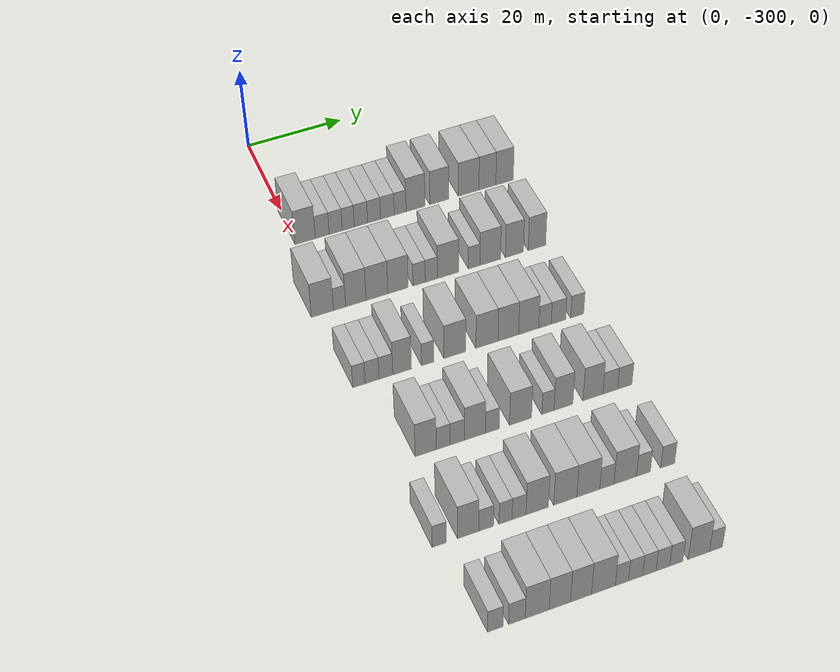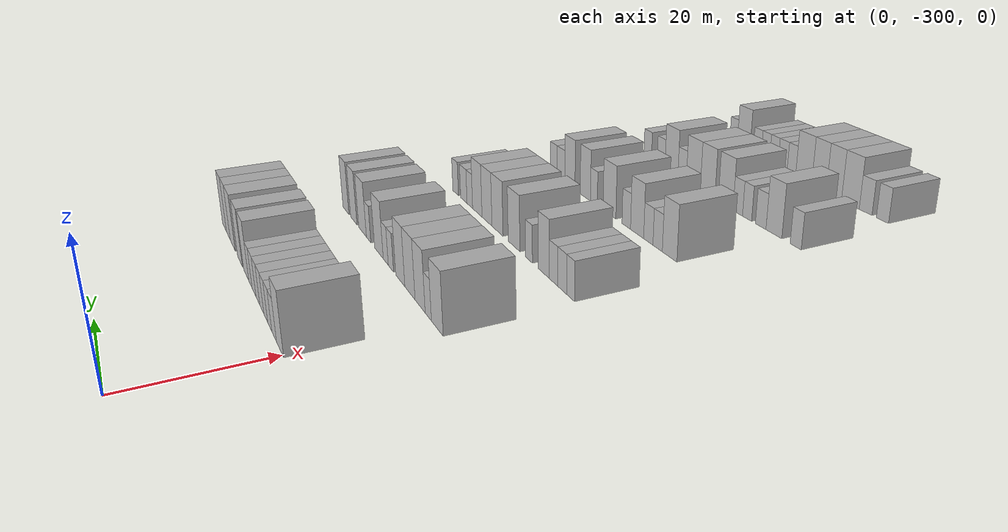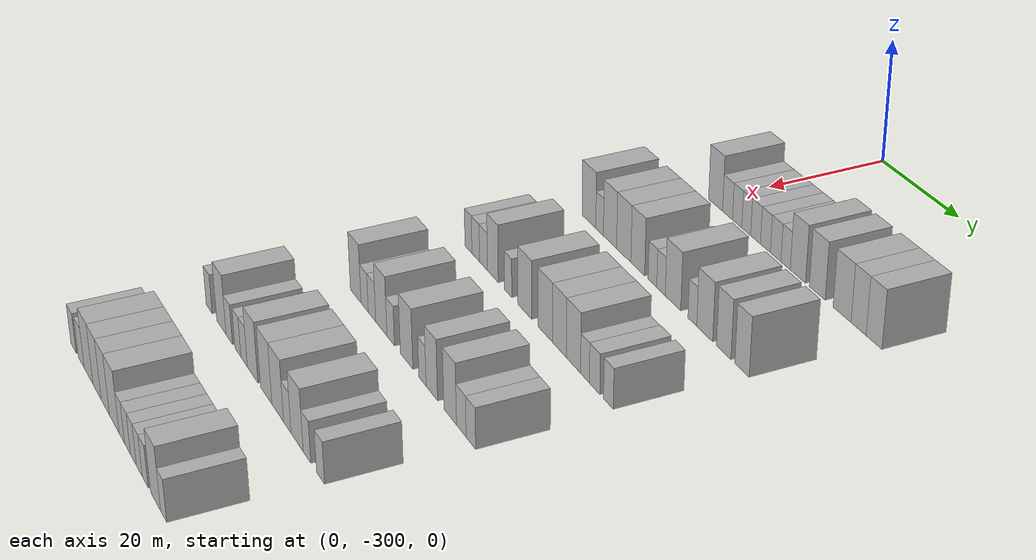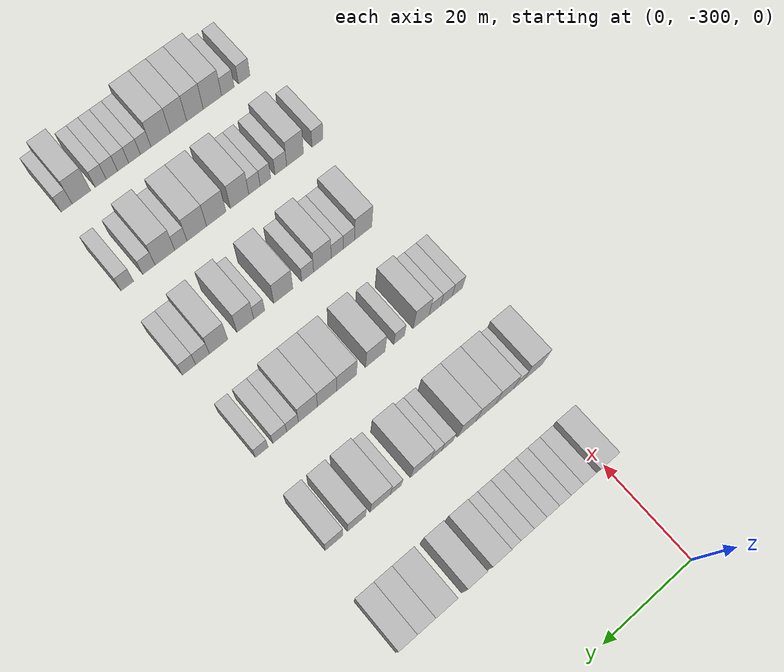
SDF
<sdf version="1.6">
 <world name="default">
  <model name="building_13">
   <static>1</static>
   <pose>25.0000 -298.5053 0 0.000000 0.000000 0.000000</pose>
   <link name="link">
    <pose>0 0 4.50 0 0 0</pose>
    <collision name="collision"><geometry><box><size>10.0000 4.1703 9.0000</size></box></geometry></collision>
    <visual name="visual">
     <cast_shadows>0</cast_shadows>
     <geometry><box><size>10.0000 4.1703 9.0000</size></box></geometry>
     <material>
      <script>
       <uri>model://HANNAS_wall/materials/scripts</uri>
       <uri>model://HANNAS_wall/materials/textures</uri>
       <name>vrc/HANNAS_wall</name>
      </script>
     </material>
    </visual>
   </link>
  </model>
  <model name="building_14">
   <static>1</static>
   <pose>25.0000 -294.9755 0 0.000000 0.000000 0.000000</pose>
   <link name="link">
    <pose>0 0 3.00 0 0 0</pose>
    <collision name="collision"><geometry><box><size>10.0000 2.8892 6.0000</size></box></geometry></collision>
    <visual name="visual">
     <cast_shadows>0</cast_shadows>
     <geometry><box><size>10.0000 2.8892 6.0000</size></box></geometry>
     <material>
      <script>
       <uri>model://HANNAS_wall/materials/scripts</uri>
       <uri>model://HANNAS_wall/materials/textures</uri>
       <name>vrc/HANNAS_wall</name>
      </script>
     </material>
    </visual>
   </link>
  </model>
  <model name="building_15">
   <static>1</static>
   <pose>25.0000 -292.1879 0 0.000000 0.000000 0.000000</pose>
   <link name="link">
    <pose>0 0 3.00 0 0 0</pose>
    <collision name="collision"><geometry><box><size>10.0000 2.6861 6.0000</size></box></geometry></collision>
    <visual name="visual">
     <cast_shadows>0</cast_shadows>
     <geometry><box><size>10.0000 2.6861 6.0000</size></box></geometry>
     <material>
      <script>
       <uri>model://HANNAS_wall/materials/scripts</uri>
       <uri>model://HANNAS_wall/materials/textures</uri>
       <name>vrc/HANNAS_wall</name>
      </script>
     </material>
    </visual>
   </link>
  </model>
  <model name="building_16">
   <static>1</static>
   <pose>25.0000 -289.5821 0 0.000000 0.000000 0.000000</pose>
   <link name="link">
    <pose>0 0 3.00 0 0 0</pose>
    <collision name="collision"><geometry><box><size>10.0000 2.5253 6.0000</size></box></geometry></collision>
    <visual name="visual">
     <cast_shadows>0</cast_shadows>
     <geometry><box><size>10.0000 2.5253 6.0000</size></box></geometry>
     <material>
      <script>
       <uri>model://HANNAS_wall/materials/scripts</uri>
       <uri>model://HANNAS_wall/materials/textures</uri>
       <name>vrc/HANNAS_wall</name>
      </script>
     </material>
    </visual>
   </link>
  </model>
  <model name="building_17">
   <static>1</static>
   <pose>25.0000 -286.9411 0 0.000000 0.000000 0.000000</pose>
   <link name="link">
    <pose>0 0 3.00 0 0 0</pose>
    <collision name="collision"><geometry><box><size>10.0000 2.7568 6.0000</size></box></geometry></collision>
    <visual name="visual">
     <cast_shadows>0</cast_shadows>
     <geometry><box><size>10.0000 2.7568 6.0000</size></box></geometry>
     <material>
      <script>
       <uri>model://HANNAS_wall/materials/scripts</uri>
       <uri>model://HANNAS_wall/materials/textures</uri>
       <name>vrc/HANNAS_wall</name>
      </script>
     </material>
    </visual>
   </link>
  </model>
  <model name="building_18">
   <static>1</static>
   <pose>25.0000 -284.1913 0 0.000000 0.000000 0.000000</pose>
   <link name="link">
    <pose>0 0 3.00 0 0 0</pose>
    <collision name="collision"><geometry><box><size>10.0000 2.7428 6.0000</size></box></geometry></collision>
    <visual name="visual">
     <cast_shadows>0</cast_shadows>
     <geometry><box><size>10.0000 2.7428 6.0000</size></box></geometry>
     <material>
      <script>
       <uri>model://HANNAS_wall/materials/scripts</uri>
       <uri>model://HANNAS_wall/materials/textures</uri>
       <name>vrc/HANNAS_wall</name>
      </script>
     </material>
    </visual>
   </link>
  </model>
  <model name="building_19">
   <static>1</static>
   <pose>25.0000 -281.3882 0 0.000000 0.000000 0.000000</pose>
   <link name="link">
    <pose>0 0 3.00 0 0 0</pose>
    <collision name="collision"><geometry><box><size>10.0000 2.8634 6.0000</size></box></geometry></collision>
    <visual name="visual">
     <cast_shadows>0</cast_shadows>
     <geometry><box><size>10.0000 2.8634 6.0000</size></box></geometry>
     <material>
      <script>
       <uri>model://HANNAS_wall/materials/scripts</uri>
       <uri>model://HANNAS_wall/materials/textures</uri>
       <name>vrc/HANNAS_wall</name>
      </script>
     </material>
    </visual>
   </link>
  </model>
  <model name="building_20">
   <static>1</static>
   <pose>25.0000 -278.7010 0 0.000000 0.000000 0.000000</pose>
   <link name="link">
    <pose>0 0 3.00 0 0 0</pose>
    <collision name="collision"><geometry><box><size>10.0000 2.5111 6.0000</size></box></geometry></collision>
    <visual name="visual">
     <cast_shadows>0</cast_shadows>
     <geometry><box><size>10.0000 2.5111 6.0000</size></box></geometry>
     <material>
      <script>
       <uri>model://HANNAS_wall/materials/scripts</uri>
       <uri>model://HANNAS_wall/materials/textures</uri>
       <name>vrc/HANNAS_wall</name>
      </script>
     </material>
    </visual>
   </link>
  </model>
  <model name="building_21">
   <static>1</static>
   <pose>25.0000 -275.4317 0 0.000000 0.000000 0.000000</pose>
   <link name="link">
    <pose>0 0 4.50 0 0 0</pose>
    <collision name="collision"><geometry><box><size>10.0000 4.0274 9.0000</size></box></geometry></collision>
    <visual name="visual">
     <cast_shadows>0</cast_shadows>
     <geometry><box><size>10.0000 4.0274 9.0000</size></box></geometry>
     <material>
      <script>
       <uri>model://HANNAS_wall/materials/scripts</uri>
       <uri>model://HANNAS_wall/materials/textures</uri>
       <name>vrc/HANNAS_wall</name>
      </script>
     </material>
    </visual>
   </link>
  </model>
  <model name="building_22">
   <static>1</static>
   <pose>25.0000 -270.3757 0 0.000000 0.000000 0.000000</pose>
   <link name="link">
    <pose>0 0 4.50 0 0 0</pose>
    <collision name="collision"><geometry><box><size>10.0000 4.0847 9.0000</size></box></geometry></collision>
    <visual name="visual">
     <cast_shadows>0</cast_shadows>
     <geometry><box><size>10.0000 4.0847 9.0000</size></box></geometry>
     <material>
      <script>
       <uri>model://HANNAS_wall/materials/scripts</uri>
       <uri>model://HANNAS_wall/materials/textures</uri>
       <name>vrc/HANNAS_wall</name>
      </script>
     </material>
    </visual>
   </link>
  </model>
  <model name="building_23">
   <static>1</static>
   <pose>25.0000 -264.0987 0 0.000000 0.000000 0.000000</pose>
   <link name="link">
    <pose>0 0 4.50 0 0 0</pose>
    <collision name="collision"><geometry><box><size>10.0000 4.4692 9.0000</size></box></geometry></collision>
    <visual name="visual">
     <cast_shadows>0</cast_shadows>
     <geometry><box><size>10.0000 4.4692 9.0000</size></box></geometry>
     <material>
      <script>
       <uri>model://HANNAS_wall/materials/scripts</uri>
       <uri>model://HANNAS_wall/materials/textures</uri>
       <name>vrc/HANNAS_wall</name>
      </script>
     </material>
    </visual>
   </link>
  </model>
  <model name="building_24">
   <static>1</static>
   <pose>25.0000 -260.0332 0 0.000000 0.000000 0.000000</pose>
   <link name="link">
    <pose>0 0 4.50 0 0 0</pose>
    <collision name="collision"><geometry><box><size>10.0000 3.6618 9.0000</size></box></geometry></collision>
    <visual name="visual">
     <cast_shadows>0</cast_shadows>
     <geometry><box><size>10.0000 3.6618 9.0000</size></box></geometry>
     <material>
      <script>
       <uri>model://HANNAS_wall/materials/scripts</uri>
       <uri>model://HANNAS_wall/materials/textures</uri>
       <name>vrc/HANNAS_wall</name>
      </script>
     </material>
    </visual>
   </link>
  </model>
  <model name="building_25">
   <static>1</static>
   <pose>25.0000 -256.3118 0 0.000000 0.000000 0.000000</pose>
   <link name="link">
    <pose>0 0 4.50 0 0 0</pose>
    <collision name="collision"><geometry><box><size>10.0000 3.7809 9.0000</size></box></geometry></collision>
    <visual name="visual">
     <cast_shadows>0</cast_shadows>
     <geometry><box><size>10.0000 3.7809 9.0000</size></box></geometry>
     <material>
      <script>
       <uri>model://HANNAS_wall/materials/scripts</uri>
       <uri>model://HANNAS_wall/materials/textures</uri>
       <name>vrc/HANNAS_wall</name>
      </script>
     </material>
    </visual>
   </link>
  </model>
  <model name="building_181">
   <static>1</static>
   <pose>44.0000 -301.9026 0 0.000000 0.000000 0.000000</pose>
   <link name="link">
    <pose>0 0 4.50 0 0 0</pose>
    <collision name="collision"><geometry><box><size>10.0000 4.4046 9.0000</size></box></geometry></collision>
    <visual name="visual">
     <cast_shadows>0</cast_shadows>
     <geometry><box><size>10.0000 4.4046 9.0000</size></box></geometry>
     <material>
      <script>
       <uri>model://HANNAS_wall/materials/scripts</uri>
       <uri>model://HANNAS_wall/materials/textures</uri>
       <name>vrc/HANNAS_wall</name>
      </script>
     </material>
    </visual>
   </link>
  </model>
  <model name="building_182">
   <static>1</static>
   <pose>44.0000 -298.4883 0 0.000000 0.000000 0.000000</pose>
   <link name="link">
    <pose>0 0 3.00 0 0 0</pose>
    <collision name="collision"><geometry><box><size>10.0000 2.4240 6.0000</size></box></geometry></collision>
    <visual name="visual">
     <cast_shadows>0</cast_shadows>
     <geometry><box><size>10.0000 2.4240 6.0000</size></box></geometry>
     <material>
      <script>
       <uri>model://HANNAS_wall/materials/scripts</uri>
       <uri>model://HANNAS_wall/materials/textures</uri>
       <name>vrc/HANNAS_wall</name>
      </script>
     </material>
    </visual>
   </link>
  </model>
  <model name="building_183">
   <static>1</static>
   <pose>44.0000 -295.2097 0 0.000000 0.000000 0.000000</pose>
   <link name="link">
    <pose>0 0 4.50 0 0 0</pose>
    <collision name="collision"><geometry><box><size>10.0000 4.1331 9.0000</size></box></geometry></collision>
    <visual name="visual">
     <cast_shadows>0</cast_shadows>
     <geometry><box><size>10.0000 4.1331 9.0000</size></box></geometry>
     <material>
      <script>
       <uri>model://HANNAS_wall/materials/scripts</uri>
       <uri>model://HANNAS_wall/materials/textures</uri>
       <name>vrc/HANNAS_wall</name>
      </script>
     </material>
    </visual>
   </link>
  </model>
  <model name="building_184">
   <static>1</static>
   <pose>44.0000 -290.9482 0 0.000000 0.000000 0.000000</pose>
   <link name="link">
    <pose>0 0 4.50 0 0 0</pose>
    <collision name="collision"><geometry><box><size>10.0000 4.3900 9.0000</size></box></geometry></collision>
    <visual name="visual">
     <cast_shadows>0</cast_shadows>
     <geometry><box><size>10.0000 4.3900 9.0000</size></box></geometry>
     <material>
      <script>
       <uri>model://HANNAS_wall/materials/scripts</uri>
       <uri>model://HANNAS_wall/materials/textures</uri>
       <name>vrc/HANNAS_wall</name>
      </script>
     </material>
    </visual>
   </link>
  </model>
  <model name="building_185">
   <static>1</static>
   <pose>44.0000 -286.6903 0 0.000000 0.000000 0.000000</pose>
   <link name="link">
    <pose>0 0 4.50 0 0 0</pose>
    <collision name="collision"><geometry><box><size>10.0000 4.1257 9.0000</size></box></geometry></collision>
    <visual name="visual">
     <cast_shadows>0</cast_shadows>
     <geometry><box><size>10.0000 4.1257 9.0000</size></box></geometry>
     <material>
      <script>
       <uri>model://HANNAS_wall/materials/scripts</uri>
       <uri>model://HANNAS_wall/materials/textures</uri>
       <name>vrc/HANNAS_wall</name>
      </script>
     </material>
    </visual>
   </link>
  </model>
  <model name="building_186">
   <static>1</static>
   <pose>44.0000 -282.3643 0 0.000000 0.000000 0.000000</pose>
   <link name="link">
    <pose>0 0 3.00 0 0 0</pose>
    <collision name="collision"><geometry><box><size>10.0000 2.5264 6.0000</size></box></geometry></collision>
    <visual name="visual">
     <cast_shadows>0</cast_shadows>
     <geometry><box><size>10.0000 2.5264 6.0000</size></box></geometry>
     <material>
      <script>
       <uri>model://HANNAS_wall/materials/scripts</uri>
       <uri>model://HANNAS_wall/materials/textures</uri>
       <name>vrc/HANNAS_wall</name>
      </script>
     </material>
    </visual>
   </link>
  </model>
  <model name="building_187">
   <static>1</static>
   <pose>44.0000 -279.8544 0 0.000000 0.000000 0.000000</pose>
   <link name="link">
    <pose>0 0 3.00 0 0 0</pose>
    <collision name="collision"><geometry><box><size>10.0000 2.4934 6.0000</size></box></geometry></collision>
    <visual name="visual">
     <cast_shadows>0</cast_shadows>
     <geometry><box><size>10.0000 2.4934 6.0000</size></box></geometry>
     <material>
      <script>
       <uri>model://HANNAS_wall/materials/scripts</uri>
       <uri>model://HANNAS_wall/materials/textures</uri>
       <name>vrc/HANNAS_wall</name>
      </script>
     </material>
    </visual>
   </link>
  </model>
  <model name="building_188">
   <static>1</static>
   <pose>44.0000 -276.4101 0 0.000000 0.000000 0.000000</pose>
   <link name="link">
    <pose>0 0 4.50 0 0 0</pose>
    <collision name="collision"><geometry><box><size>10.0000 4.3952 9.0000</size></box></geometry></collision>
    <visual name="visual">
     <cast_shadows>0</cast_shadows>
     <geometry><box><size>10.0000 4.3952 9.0000</size></box></geometry>
     <material>
      <script>
       <uri>model://HANNAS_wall/materials/scripts</uri>
       <uri>model://HANNAS_wall/materials/textures</uri>
       <name>vrc/HANNAS_wall</name>
      </script>
     </material>
    </visual>
   </link>
  </model>
  <model name="building_189">
   <static>1</static>
   <pose>44.0000 -271.0089 0 0.000000 0.000000 0.000000</pose>
   <link name="link">
    <pose>0 0 3.00 0 0 0</pose>
    <collision name="collision"><geometry><box><size>10.0000 2.4071 6.0000</size></box></geometry></collision>
    <visual name="visual">
     <cast_shadows>0</cast_shadows>
     <geometry><box><size>10.0000 2.4071 6.0000</size></box></geometry>
     <material>
      <script>
       <uri>model://HANNAS_wall/materials/scripts</uri>
       <uri>model://HANNAS_wall/materials/textures</uri>
       <name>vrc/HANNAS_wall</name>
      </script>
     </material>
    </visual>
   </link>
  </model>
  <model name="building_190">
   <static>1</static>
   <pose>44.0000 -267.6491 0 0.000000 0.000000 0.000000</pose>
   <link name="link">
    <pose>0 0 4.50 0 0 0</pose>
    <collision name="collision"><geometry><box><size>10.0000 4.3125 9.0000</size></box></geometry></collision>
    <visual name="visual">
     <cast_shadows>0</cast_shadows>
     <geometry><box><size>10.0000 4.3125 9.0000</size></box></geometry>
     <material>
      <script>
       <uri>model://HANNAS_wall/materials/scripts</uri>
       <uri>model://HANNAS_wall/materials/textures</uri>
       <name>vrc/HANNAS_wall</name>
      </script>
     </material>
    </visual>
   </link>
  </model>
  <model name="building_191">
   <static>1</static>
   <pose>44.0000 -262.5863 0 0.000000 0.000000 0.000000</pose>
   <link name="link">
    <pose>0 0 4.50 0 0 0</pose>
    <collision name="collision"><geometry><box><size>10.0000 3.8130 9.0000</size></box></geometry></collision>
    <visual name="visual">
     <cast_shadows>0</cast_shadows>
     <geometry><box><size>10.0000 3.8130 9.0000</size></box></geometry>
     <material>
      <script>
       <uri>model://HANNAS_wall/materials/scripts</uri>
       <uri>model://HANNAS_wall/materials/textures</uri>
       <name>vrc/HANNAS_wall</name>
      </script>
     </material>
    </visual>
   </link>
  </model>
  <model name="building_192">
   <static>1</static>
   <pose>44.0000 -257.8369 0 0.000000 0.000000 0.000000</pose>
   <link name="link">
    <pose>0 0 4.50 0 0 0</pose>
    <collision name="collision"><geometry><box><size>10.0000 3.6857 9.0000</size></box></geometry></collision>
    <visual name="visual">
     <cast_shadows>0</cast_shadows>
     <geometry><box><size>10.0000 3.6857 9.0000</size></box></geometry>
     <material>
      <script>
       <uri>model://HANNAS_wall/materials/scripts</uri>
       <uri>model://HANNAS_wall/materials/textures</uri>
       <name>vrc/HANNAS_wall</name>
      </script>
     </material>
    </visual>
   </link>
  </model>
  <model name="building_353">
   <static>1</static>
   <pose>63.0000 -301.8173 0 0.000000 0.000000 0.000000</pose>
   <link name="link">
    <pose>0 0 3.00 0 0 0</pose>
    <collision name="collision"><geometry><box><size>10.0000 2.4129 6.0000</size></box></geometry></collision>
    <visual name="visual">
     <cast_shadows>0</cast_shadows>
     <geometry><box><size>10.0000 2.4129 6.0000</size></box></geometry>
     <material>
      <script>
       <uri>model://HANNAS_wall/materials/scripts</uri>
       <uri>model://HANNAS_wall/materials/textures</uri>
       <name>vrc/HANNAS_wall</name>
      </script>
     </material>
    </visual>
   </link>
  </model>
  <model name="building_354">
   <static>1</static>
   <pose>63.0000 -299.2687 0 0.000000 0.000000 0.000000</pose>
   <link name="link">
    <pose>0 0 3.00 0 0 0</pose>
    <collision name="collision"><geometry><box><size>10.0000 2.6842 6.0000</size></box></geometry></collision>
    <visual name="visual">
     <cast_shadows>0</cast_shadows>
     <geometry><box><size>10.0000 2.6842 6.0000</size></box></geometry>
     <material>
      <script>
       <uri>model://HANNAS_wall/materials/scripts</uri>
       <uri>model://HANNAS_wall/materials/textures</uri>
       <name>vrc/HANNAS_wall</name>
      </script>
     </material>
    </visual>
   </link>
  </model>
  <model name="building_355">
   <static>1</static>
   <pose>63.0000 -296.5769 0 0.000000 0.000000 0.000000</pose>
   <link name="link">
    <pose>0 0 3.00 0 0 0</pose>
    <collision name="collision"><geometry><box><size>10.0000 2.6995 6.0000</size></box></geometry></collision>
    <visual name="visual">
     <cast_shadows>0</cast_shadows>
     <geometry><box><size>10.0000 2.6995 6.0000</size></box></geometry>
     <material>
      <script>
       <uri>model://HANNAS_wall/materials/scripts</uri>
       <uri>model://HANNAS_wall/materials/textures</uri>
       <name>vrc/HANNAS_wall</name>
      </script>
     </material>
    </visual>
   </link>
  </model>
  <model name="building_356">
   <static>1</static>
   <pose>63.0000 -293.3985 0 0.000000 0.000000 0.000000</pose>
   <link name="link">
    <pose>0 0 4.50 0 0 0</pose>
    <collision name="collision"><geometry><box><size>10.0000 3.6572 9.0000</size></box></geometry></collision>
    <visual name="visual">
     <cast_shadows>0</cast_shadows>
     <geometry><box><size>10.0000 3.6572 9.0000</size></box></geometry>
     <material>
      <script>
       <uri>model://HANNAS_wall/materials/scripts</uri>
       <uri>model://HANNAS_wall/materials/textures</uri>
       <name>vrc/HANNAS_wall</name>
      </script>
     </material>
    </visual>
   </link>
  </model>
  <model name="building_357">
   <static>1</static>
   <pose>63.0000 -288.3585 0 0.000000 0.000000 0.000000</pose>
   <link name="link">
    <pose>0 0 3.00 0 0 0</pose>
    <collision name="collision"><geometry><box><size>10.0000 2.4229 6.0000</size></box></geometry></collision>
    <visual name="visual">
     <cast_shadows>0</cast_shadows>
     <geometry><box><size>10.0000 2.4229 6.0000</size></box></geometry>
     <material>
      <script>
       <uri>model://HANNAS_wall/materials/scripts</uri>
       <uri>model://HANNAS_wall/materials/textures</uri>
       <name>vrc/HANNAS_wall</name>
      </script>
     </material>
    </visual>
   </link>
  </model>
  <model name="building_358">
   <static>1</static>
   <pose>63.0000 -282.9649 0 0.000000 0.000000 0.000000</pose>
   <link name="link">
    <pose>0 0 4.50 0 0 0</pose>
    <collision name="collision"><geometry><box><size>10.0000 4.3642 9.0000</size></box></geometry></collision>
    <visual name="visual">
     <cast_shadows>0</cast_shadows>
     <geometry><box><size>10.0000 4.3642 9.0000</size></box></geometry>
     <material>
      <script>
       <uri>model://HANNAS_wall/materials/scripts</uri>
       <uri>model://HANNAS_wall/materials/textures</uri>
       <name>vrc/HANNAS_wall</name>
      </script>
     </material>
    </visual>
   </link>
  </model>
  <model name="building_359">
   <static>1</static>
   <pose>63.0000 -276.5648 0 0.000000 0.000000 0.000000</pose>
   <link name="link">
    <pose>0 0 4.50 0 0 0</pose>
    <collision name="collision"><geometry><box><size>10.0000 4.4360 9.0000</size></box></geometry></collision>
    <visual name="visual">
     <cast_shadows>0</cast_shadows>
     <geometry><box><size>10.0000 4.4360 9.0000</size></box></geometry>
     <material>
      <script>
       <uri>model://HANNAS_wall/materials/scripts</uri>
       <uri>model://HANNAS_wall/materials/textures</uri>
       <name>vrc/HANNAS_wall</name>
      </script>
     </material>
    </visual>
   </link>
  </model>
  <model name="building_360">
   <static>1</static>
   <pose>63.0000 -272.2573 0 0.000000 0.000000 0.000000</pose>
   <link name="link">
    <pose>0 0 4.50 0 0 0</pose>
    <collision name="collision"><geometry><box><size>10.0000 4.1789 9.0000</size></box></geometry></collision>
    <visual name="visual">
     <cast_shadows>0</cast_shadows>
     <geometry><box><size>10.0000 4.1789 9.0000</size></box></geometry>
     <material>
      <script>
       <uri>model://HANNAS_wall/materials/scripts</uri>
       <uri>model://HANNAS_wall/materials/textures</uri>
       <name>vrc/HANNAS_wall</name>
      </script>
     </material>
    </visual>
   </link>
  </model>
  <model name="building_361">
   <static>1</static>
   <pose>63.0000 -268.1144 0 0.000000 0.000000 0.000000</pose>
   <link name="link">
    <pose>0 0 4.50 0 0 0</pose>
    <collision name="collision"><geometry><box><size>10.0000 4.1070 9.0000</size></box></geometry></collision>
    <visual name="visual">
     <cast_shadows>0</cast_shadows>
     <geometry><box><size>10.0000 4.1070 9.0000</size></box></geometry>
     <material>
      <script>
       <uri>model://HANNAS_wall/materials/scripts</uri>
       <uri>model://HANNAS_wall/materials/textures</uri>
       <name>vrc/HANNAS_wall</name>
      </script>
     </material>
    </visual>
   </link>
  </model>
  <model name="building_362">
   <static>1</static>
   <pose>63.0000 -264.7962 0 0.000000 0.000000 0.000000</pose>
   <link name="link">
    <pose>0 0 3.00 0 0 0</pose>
    <collision name="collision"><geometry><box><size>10.0000 2.5292 6.0000</size></box></geometry></collision>
    <visual name="visual">
     <cast_shadows>0</cast_shadows>
     <geometry><box><size>10.0000 2.5292 6.0000</size></box></geometry>
     <material>
      <script>
       <uri>model://HANNAS_wall/materials/scripts</uri>
       <uri>model://HANNAS_wall/materials/textures</uri>
       <name>vrc/HANNAS_wall</name>
      </script>
     </material>
    </visual>
   </link>
  </model>
  <model name="building_363">
   <static>1</static>
   <pose>63.0000 -262.0402 0 0.000000 0.000000 0.000000</pose>
   <link name="link">
    <pose>0 0 3.00 0 0 0</pose>
    <collision name="collision"><geometry><box><size>10.0000 2.9829 6.0000</size></box></geometry></collision>
    <visual name="visual">
     <cast_shadows>0</cast_shadows>
     <geometry><box><size>10.0000 2.9829 6.0000</size></box></geometry>
     <material>
      <script>
       <uri>model://HANNAS_wall/materials/scripts</uri>
       <uri>model://HANNAS_wall/materials/textures</uri>
       <name>vrc/HANNAS_wall</name>
      </script>
     </material>
    </visual>
   </link>
  </model>
  <model name="building_364">
   <static>1</static>
   <pose>63.0000 -258.1955 0 0.000000 0.000000 0.000000</pose>
   <link name="link">
    <pose>0 0 3.00 0 0 0</pose>
    <collision name="collision"><geometry><box><size>10.0000 2.7066 6.0000</size></box></geometry></collision>
    <visual name="visual">
     <cast_shadows>0</cast_shadows>
     <geometry><box><size>10.0000 2.7066 6.0000</size></box></geometry>
     <material>
      <script>
       <uri>model://HANNAS_wall/materials/scripts</uri>
       <uri>model://HANNAS_wall/materials/textures</uri>
       <name>vrc/HANNAS_wall</name>
      </script>
     </material>
    </visual>
   </link>
  </model>
  <model name="building_527">
   <static>1</static>
   <pose>82.0000 -296.4948 0 0.000000 0.000000 0.000000</pose>
   <link name="link">
    <pose>0 0 4.50 0 0 0</pose>
    <collision name="collision"><geometry><box><size>10.0000 4.0147 9.0000</size></box></geometry></collision>
    <visual name="visual">
     <cast_shadows>0</cast_shadows>
     <geometry><box><size>10.0000 4.0147 9.0000</size></box></geometry>
     <material>
      <script>
       <uri>model://HANNAS_wall/materials/scripts</uri>
       <uri>model://HANNAS_wall/materials/textures</uri>
       <name>vrc/HANNAS_wall</name>
      </script>
     </material>
    </visual>
   </link>
  </model>
  <model name="building_528">
   <static>1</static>
   <pose>82.0000 -293.1551 0 0.000000 0.000000 0.000000</pose>
   <link name="link">
    <pose>0 0 3.00 0 0 0</pose>
    <collision name="collision"><geometry><box><size>10.0000 2.6646 6.0000</size></box></geometry></collision>
    <visual name="visual">
     <cast_shadows>0</cast_shadows>
     <geometry><box><size>10.0000 2.6646 6.0000</size></box></geometry>
     <material>
      <script>
       <uri>model://HANNAS_wall/materials/scripts</uri>
       <uri>model://HANNAS_wall/materials/textures</uri>
       <name>vrc/HANNAS_wall</name>
      </script>
     </material>
    </visual>
   </link>
  </model>
  <model name="building_529">
   <static>1</static>
   <pose>82.0000 -290.4536 0 0.000000 0.000000 0.000000</pose>
   <link name="link">
    <pose>0 0 3.00 0 0 0</pose>
    <collision name="collision"><geometry><box><size>10.0000 2.7385 6.0000</size></box></geometry></collision>
    <visual name="visual">
     <cast_shadows>0</cast_shadows>
     <geometry><box><size>10.0000 2.7385 6.0000</size></box></geometry>
     <material>
      <script>
       <uri>model://HANNAS_wall/materials/scripts</uri>
       <uri>model://HANNAS_wall/materials/textures</uri>
       <name>vrc/HANNAS_wall</name>
      </script>
     </material>
    </visual>
   </link>
  </model>
  <model name="building_530">
   <static>1</static>
   <pose>82.0000 -287.0803 0 0.000000 0.000000 0.000000</pose>
   <link name="link">
    <pose>0 0 4.50 0 0 0</pose>
    <collision name="collision"><geometry><box><size>10.0000 4.0080 9.0000</size></box></geometry></collision>
    <visual name="visual">
     <cast_shadows>0</cast_shadows>
     <geometry><box><size>10.0000 4.0080 9.0000</size></box></geometry>
     <material>
      <script>
       <uri>model://HANNAS_wall/materials/scripts</uri>
       <uri>model://HANNAS_wall/materials/textures</uri>
       <name>vrc/HANNAS_wall</name>
      </script>
     </material>
    </visual>
   </link>
  </model>
  <model name="building_531">
   <static>1</static>
   <pose>82.0000 -283.7301 0 0.000000 0.000000 0.000000</pose>
   <link name="link">
    <pose>0 0 3.00 0 0 0</pose>
    <collision name="collision"><geometry><box><size>10.0000 2.6924 6.0000</size></box></geometry></collision>
    <visual name="visual">
     <cast_shadows>0</cast_shadows>
     <geometry><box><size>10.0000 2.6924 6.0000</size></box></geometry>
     <material>
      <script>
       <uri>model://HANNAS_wall/materials/scripts</uri>
       <uri>model://HANNAS_wall/materials/textures</uri>
       <name>vrc/HANNAS_wall</name>
      </script>
     </material>
    </visual>
   </link>
  </model>
  <model name="building_532">
   <static>1</static>
   <pose>82.0000 -278.2430 0 0.000000 0.000000 0.000000</pose>
   <link name="link">
    <pose>0 0 4.50 0 0 0</pose>
    <collision name="collision"><geometry><box><size>10.0000 4.2819 9.0000</size></box></geometry></collision>
    <visual name="visual">
     <cast_shadows>0</cast_shadows>
     <geometry><box><size>10.0000 4.2819 9.0000</size></box></geometry>
     <material>
      <script>
       <uri>model://HANNAS_wall/materials/scripts</uri>
       <uri>model://HANNAS_wall/materials/textures</uri>
       <name>vrc/HANNAS_wall</name>
      </script>
     </material>
    </visual>
   </link>
  </model>
  <model name="building_533">
   <static>1</static>
   <pose>82.0000 -272.8940 0 0.000000 0.000000 0.000000</pose>
   <link name="link">
    <pose>0 0 3.00 0 0 0</pose>
    <collision name="collision"><geometry><box><size>10.0000 2.4160 6.0000</size></box></geometry></collision>
    <visual name="visual">
     <cast_shadows>0</cast_shadows>
     <geometry><box><size>10.0000 2.4160 6.0000</size></box></geometry>
     <material>
      <script>
       <uri>model://HANNAS_wall/materials/scripts</uri>
       <uri>model://HANNAS_wall/materials/textures</uri>
       <name>vrc/HANNAS_wall</name>
      </script>
     </material>
    </visual>
   </link>
  </model>
  <model name="building_534">
   <static>1</static>
   <pose>82.0000 -269.8249 0 0.000000 0.000000 0.000000</pose>
   <link name="link">
    <pose>0 0 4.50 0 0 0</pose>
    <collision name="collision"><geometry><box><size>10.0000 3.7223 9.0000</size></box></geometry></collision>
    <visual name="visual">
     <cast_shadows>0</cast_shadows>
     <geometry><box><size>10.0000 3.7223 9.0000</size></box></geometry>
     <material>
      <script>
       <uri>model://HANNAS_wall/materials/scripts</uri>
       <uri>model://HANNAS_wall/materials/textures</uri>
       <name>vrc/HANNAS_wall</name>
      </script>
     </material>
    </visual>
   </link>
  </model>
  <model name="building_535">
   <static>1</static>
   <pose>82.0000 -263.9822 0 0.000000 0.000000 0.000000</pose>
   <link name="link">
    <pose>0 0 4.50 0 0 0</pose>
    <collision name="collision"><geometry><box><size>10.0000 3.9631 9.0000</size></box></geometry></collision>
    <visual name="visual">
     <cast_shadows>0</cast_shadows>
     <geometry><box><size>10.0000 3.9631 9.0000</size></box></geometry>
     <material>
      <script>
       <uri>model://HANNAS_wall/materials/scripts</uri>
       <uri>model://HANNAS_wall/materials/textures</uri>
       <name>vrc/HANNAS_wall</name>
      </script>
     </material>
    </visual>
   </link>
  </model>
  <model name="building_536">
   <static>1</static>
   <pose>82.0000 -260.5195 0 0.000000 0.000000 0.000000</pose>
   <link name="link">
    <pose>0 0 3.00 0 0 0</pose>
    <collision name="collision"><geometry><box><size>10.0000 2.9623 6.0000</size></box></geometry></collision>
    <visual name="visual">
     <cast_shadows>0</cast_shadows>
     <geometry><box><size>10.0000 2.9623 6.0000</size></box></geometry>
     <material>
      <script>
       <uri>model://HANNAS_wall/materials/scripts</uri>
       <uri>model://HANNAS_wall/materials/textures</uri>
       <name>vrc/HANNAS_wall</name>
      </script>
     </material>
    </visual>
   </link>
  </model>
  <model name="building_537">
   <static>1</static>
   <pose>82.0000 -257.6012 0 0.000000 0.000000 0.000000</pose>
   <link name="link">
    <pose>0 0 3.00 0 0 0</pose>
    <collision name="collision"><geometry><box><size>10.0000 2.8744 6.0000</size></box></geometry></collision>
    <visual name="visual">
     <cast_shadows>0</cast_shadows>
     <geometry><box><size>10.0000 2.8744 6.0000</size></box></geometry>
     <material>
      <script>
       <uri>model://HANNAS_wall/materials/scripts</uri>
       <uri>model://HANNAS_wall/materials/textures</uri>
       <name>vrc/HANNAS_wall</name>
      </script>
     </material>
    </visual>
   </link>
  </model>
  <model name="building_708">
   <static>1</static>
   <pose>101.0000 -301.7462 0 0.000000 0.000000 0.000000</pose>
   <link name="link">
    <pose>0 0 3.00 0 0 0</pose>
    <collision name="collision"><geometry><box><size>10.0000 2.6089 6.0000</size></box></geometry></collision>
    <visual name="visual">
     <cast_shadows>0</cast_shadows>
     <geometry><box><size>10.0000 2.6089 6.0000</size></box></geometry>
     <material>
      <script>
       <uri>model://HANNAS_wall/materials/scripts</uri>
       <uri>model://HANNAS_wall/materials/textures</uri>
       <name>vrc/HANNAS_wall</name>
      </script>
     </material>
    </visual>
   </link>
  </model>
  <model name="building_709">
   <static>1</static>
   <pose>101.0000 -296.4688 0 0.000000 0.000000 0.000000</pose>
   <link name="link">
    <pose>0 0 4.50 0 0 0</pose>
    <collision name="collision"><geometry><box><size>10.0000 3.9459 9.0000</size></box></geometry></collision>
    <visual name="visual">
     <cast_shadows>0</cast_shadows>
     <geometry><box><size>10.0000 3.9459 9.0000</size></box></geometry>
     <material>
      <script>
       <uri>model://HANNAS_wall/materials/scripts</uri>
       <uri>model://HANNAS_wall/materials/textures</uri>
       <name>vrc/HANNAS_wall</name>
      </script>
     </material>
    </visual>
   </link>
  </model>
  <model name="building_710">
   <static>1</static>
   <pose>101.0000 -293.1326 0 0.000000 0.000000 0.000000</pose>
   <link name="link">
    <pose>0 0 3.00 0 0 0</pose>
    <collision name="collision"><geometry><box><size>10.0000 2.7263 6.0000</size></box></geometry></collision>
    <visual name="visual">
     <cast_shadows>0</cast_shadows>
     <geometry><box><size>10.0000 2.7263 6.0000</size></box></geometry>
     <material>
      <script>
       <uri>model://HANNAS_wall/materials/scripts</uri>
       <uri>model://HANNAS_wall/materials/textures</uri>
       <name>vrc/HANNAS_wall</name>
      </script>
     </material>
    </visual>
   </link>
  </model>
  <model name="building_711">
   <static>1</static>
   <pose>101.0000 -289.5519 0 0.000000 0.000000 0.000000</pose>
   <link name="link">
    <pose>0 0 3.00 0 0 0</pose>
    <collision name="collision"><geometry><box><size>10.0000 2.4351 6.0000</size></box></geometry></collision>
    <visual name="visual">
     <cast_shadows>0</cast_shadows>
     <geometry><box><size>10.0000 2.4351 6.0000</size></box></geometry>
     <material>
      <script>
       <uri>model://HANNAS_wall/materials/scripts</uri>
       <uri>model://HANNAS_wall/materials/textures</uri>
       <name>vrc/HANNAS_wall</name>
      </script>
     </material>
    </visual>
   </link>
  </model>
  <model name="building_712">
   <static>1</static>
   <pose>101.0000 -287.0259 0 0.000000 0.000000 0.000000</pose>
   <link name="link">
    <pose>0 0 3.00 0 0 0</pose>
    <collision name="collision"><geometry><box><size>10.0000 2.6170 6.0000</size></box></geometry></collision>
    <visual name="visual">
     <cast_shadows>0</cast_shadows>
     <geometry><box><size>10.0000 2.6170 6.0000</size></box></geometry>
     <material>
      <script>
       <uri>model://HANNAS_wall/materials/scripts</uri>
       <uri>model://HANNAS_wall/materials/textures</uri>
       <name>vrc/HANNAS_wall</name>
      </script>
     </material>
    </visual>
   </link>
  </model>
  <model name="building_713">
   <static>1</static>
   <pose>101.0000 -283.6065 0 0.000000 0.000000 0.000000</pose>
   <link name="link">
    <pose>0 0 4.50 0 0 0</pose>
    <collision name="collision"><geometry><box><size>10.0000 4.2218 9.0000</size></box></geometry></collision>
    <visual name="visual">
     <cast_shadows>0</cast_shadows>
     <geometry><box><size>10.0000 4.2218 9.0000</size></box></geometry>
     <material>
      <script>
       <uri>model://HANNAS_wall/materials/scripts</uri>
       <uri>model://HANNAS_wall/materials/textures</uri>
       <name>vrc/HANNAS_wall</name>
      </script>
     </material>
    </visual>
   </link>
  </model>
  <model name="building_714">
   <static>1</static>
   <pose>101.0000 -278.3052 0 0.000000 0.000000 0.000000</pose>
   <link name="link">
    <pose>0 0 4.50 0 0 0</pose>
    <collision name="collision"><geometry><box><size>10.0000 4.3809 9.0000</size></box></geometry></collision>
    <visual name="visual">
     <cast_shadows>0</cast_shadows>
     <geometry><box><size>10.0000 4.3809 9.0000</size></box></geometry>
     <material>
      <script>
       <uri>model://HANNAS_wall/materials/scripts</uri>
       <uri>model://HANNAS_wall/materials/textures</uri>
       <name>vrc/HANNAS_wall</name>
      </script>
     </material>
    </visual>
   </link>
  </model>
  <model name="building_715">
   <static>1</static>
   <pose>101.0000 -273.9212 0 0.000000 0.000000 0.000000</pose>
   <link name="link">
    <pose>0 0 4.50 0 0 0</pose>
    <collision name="collision"><geometry><box><size>10.0000 4.3870 9.0000</size></box></geometry></collision>
    <visual name="visual">
     <cast_shadows>0</cast_shadows>
     <geometry><box><size>10.0000 4.3870 9.0000</size></box></geometry>
     <material>
      <script>
       <uri>model://HANNAS_wall/materials/scripts</uri>
       <uri>model://HANNAS_wall/materials/textures</uri>
       <name>vrc/HANNAS_wall</name>
      </script>
     </material>
    </visual>
   </link>
  </model>
  <model name="building_716">
   <static>1</static>
   <pose>101.0000 -270.3599 0 0.000000 0.000000 0.000000</pose>
   <link name="link">
    <pose>0 0 3.00 0 0 0</pose>
    <collision name="collision"><geometry><box><size>10.0000 2.7356 6.0000</size></box></geometry></collision>
    <visual name="visual">
     <cast_shadows>0</cast_shadows>
     <geometry><box><size>10.0000 2.7356 6.0000</size></box></geometry>
     <material>
      <script>
       <uri>model://HANNAS_wall/materials/scripts</uri>
       <uri>model://HANNAS_wall/materials/textures</uri>
       <name>vrc/HANNAS_wall</name>
      </script>
     </material>
    </visual>
   </link>
  </model>
  <model name="building_717">
   <static>1</static>
   <pose>101.0000 -266.8157 0 0.000000 0.000000 0.000000</pose>
   <link name="link">
    <pose>0 0 4.50 0 0 0</pose>
    <collision name="collision"><geometry><box><size>10.0000 4.3527 9.0000</size></box></geometry></collision>
    <visual name="visual">
     <cast_shadows>0</cast_shadows>
     <geometry><box><size>10.0000 4.3527 9.0000</size></box></geometry>
     <material>
      <script>
       <uri>model://HANNAS_wall/materials/scripts</uri>
       <uri>model://HANNAS_wall/materials/textures</uri>
       <name>vrc/HANNAS_wall</name>
      </script>
     </material>
    </visual>
   </link>
  </model>
  <model name="building_718">
   <static>1</static>
   <pose>101.0000 -263.2930 0 0.000000 0.000000 0.000000</pose>
   <link name="link">
    <pose>0 0 3.00 0 0 0</pose>
    <collision name="collision"><geometry><box><size>10.0000 2.6928 6.0000</size></box></geometry></collision>
    <visual name="visual">
     <cast_shadows>0</cast_shadows>
     <geometry><box><size>10.0000 2.6928 6.0000</size></box></geometry>
     <material>
      <script>
       <uri>model://HANNAS_wall/materials/scripts</uri>
       <uri>model://HANNAS_wall/materials/textures</uri>
       <name>vrc/HANNAS_wall</name>
      </script>
     </material>
    </visual>
   </link>
  </model>
  <model name="building_719">
   <static>1</static>
   <pose>101.0000 -258.5814 0 0.000000 0.000000 0.000000</pose>
   <link name="link">
    <pose>0 0 3.00 0 0 0</pose>
    <collision name="collision"><geometry><box><size>10.0000 2.7304 6.0000</size></box></geometry></collision>
    <visual name="visual">
     <cast_shadows>0</cast_shadows>
     <geometry><box><size>10.0000 2.7304 6.0000</size></box></geometry>
     <material>
      <script>
       <uri>model://HANNAS_wall/materials/scripts</uri>
       <uri>model://HANNAS_wall/materials/textures</uri>
       <name>vrc/HANNAS_wall</name>
      </script>
     </material>
    </visual>
   </link>
  </model>
  <model name="building_881">
   <static>1</static>
   <pose>120.0000 -299.7261 0 0.000000 0.000000 0.000000</pose>
   <link name="link">
    <pose>0 0 3.00 0 0 0</pose>
    <collision name="collision"><geometry><box><size>10.0000 2.7407 6.0000</size></box></geometry></collision>
    <visual name="visual">
     <cast_shadows>0</cast_shadows>
     <geometry><box><size>10.0000 2.7407 6.0000</size></box></geometry>
     <material>
      <script>
       <uri>model://HANNAS_wall/materials/scripts</uri>
       <uri>model://HANNAS_wall/materials/textures</uri>
       <name>vrc/HANNAS_wall</name>
      </script>
     </material>
    </visual>
   </link>
  </model>
  <model name="building_882">
   <static>1</static>
   <pose>120.0000 -295.8640 0 0.000000 0.000000 0.000000</pose>
   <link name="link">
    <pose>0 0 3.00 0 0 0</pose>
    <collision name="collision"><geometry><box><size>10.0000 2.9836 6.0000</size></box></geometry></collision>
    <visual name="visual">
     <cast_shadows>0</cast_shadows>
     <geometry><box><size>10.0000 2.9836 6.0000</size></box></geometry>
     <material>
      <script>
       <uri>model://HANNAS_wall/materials/scripts</uri>
       <uri>model://HANNAS_wall/materials/textures</uri>
       <name>vrc/HANNAS_wall</name>
      </script>
     </material>
    </visual>
   </link>
  </model>
  <model name="building_883">
   <static>1</static>
   <pose>120.0000 -292.2235 0 0.000000 0.000000 0.000000</pose>
   <link name="link">
    <pose>0 0 4.50 0 0 0</pose>
    <collision name="collision"><geometry><box><size>10.0000 4.2973 9.0000</size></box></geometry></collision>
    <visual name="visual">
     <cast_shadows>0</cast_shadows>
     <geometry><box><size>10.0000 4.2973 9.0000</size></box></geometry>
     <material>
      <script>
       <uri>model://HANNAS_wall/materials/scripts</uri>
       <uri>model://HANNAS_wall/materials/textures</uri>
       <name>vrc/HANNAS_wall</name>
      </script>
     </material>
    </visual>
   </link>
  </model>
  <model name="building_884">
   <static>1</static>
   <pose>120.0000 -288.1268 0 0.000000 0.000000 0.000000</pose>
   <link name="link">
    <pose>0 0 4.50 0 0 0</pose>
    <collision name="collision"><geometry><box><size>10.0000 3.8961 9.0000</size></box></geometry></collision>
    <visual name="visual">
     <cast_shadows>0</cast_shadows>
     <geometry><box><size>10.0000 3.8961 9.0000</size></box></geometry>
     <material>
      <script>
       <uri>model://HANNAS_wall/materials/scripts</uri>
       <uri>model://HANNAS_wall/materials/textures</uri>
       <name>vrc/HANNAS_wall</name>
      </script>
     </material>
    </visual>
   </link>
  </model>
  <model name="building_885">
   <static>1</static>
   <pose>120.0000 -284.2697 0 0.000000 0.000000 0.000000</pose>
   <link name="link">
    <pose>0 0 4.50 0 0 0</pose>
    <collision name="collision"><geometry><box><size>10.0000 3.8180 9.0000</size></box></geometry></collision>
    <visual name="visual">
     <cast_shadows>0</cast_shadows>
     <geometry><box><size>10.0000 3.8180 9.0000</size></box></geometry>
     <material>
      <script>
       <uri>model://HANNAS_wall/materials/scripts</uri>
       <uri>model://HANNAS_wall/materials/textures</uri>
       <name>vrc/HANNAS_wall</name>
      </script>
     </material>
    </visual>
   </link>
  </model>
  <model name="building_886">
   <static>1</static>
   <pose>120.0000 -280.1656 0 0.000000 0.000000 0.000000</pose>
   <link name="link">
    <pose>0 0 4.50 0 0 0</pose>
    <collision name="collision"><geometry><box><size>10.0000 4.3903 9.0000</size></box></geometry></collision>
    <visual name="visual">
     <cast_shadows>0</cast_shadows>
     <geometry><box><size>10.0000 4.3903 9.0000</size></box></geometry>
     <material>
      <script>
       <uri>model://HANNAS_wall/materials/scripts</uri>
       <uri>model://HANNAS_wall/materials/textures</uri>
       <name>vrc/HANNAS_wall</name>
      </script>
     </material>
    </visual>
   </link>
  </model>
  <model name="building_887">
   <static>1</static>
   <pose>120.0000 -276.7655 0 0.000000 0.000000 0.000000</pose>
   <link name="link">
    <pose>0 0 3.00 0 0 0</pose>
    <collision name="collision"><geometry><box><size>10.0000 2.4099 6.0000</size></box></geometry></collision>
    <visual name="visual">
     <cast_shadows>0</cast_shadows>
     <geometry><box><size>10.0000 2.4099 6.0000</size></box></geometry>
     <material>
      <script>
       <uri>model://HANNAS_wall/materials/scripts</uri>
       <uri>model://HANNAS_wall/materials/textures</uri>
       <name>vrc/HANNAS_wall</name>
      </script>
     </material>
    </visual>
   </link>
  </model>
  <model name="building_888">
   <static>1</static>
   <pose>120.0000 -274.2382 0 0.000000 0.000000 0.000000</pose>
   <link name="link">
    <pose>0 0 3.00 0 0 0</pose>
    <collision name="collision"><geometry><box><size>10.0000 2.6446 6.0000</size></box></geometry></collision>
    <visual name="visual">
     <cast_shadows>0</cast_shadows>
     <geometry><box><size>10.0000 2.6446 6.0000</size></box></geometry>
     <material>
      <script>
       <uri>model://HANNAS_wall/materials/scripts</uri>
       <uri>model://HANNAS_wall/materials/textures</uri>
       <name>vrc/HANNAS_wall</name>
      </script>
     </material>
    </visual>
   </link>
  </model>
  <model name="building_889">
   <static>1</static>
   <pose>120.0000 -271.6652 0 0.000000 0.000000 0.000000</pose>
   <link name="link">
    <pose>0 0 3.00 0 0 0</pose>
    <collision name="collision"><geometry><box><size>10.0000 2.5015 6.0000</size></box></geometry></collision>
    <visual name="visual">
     <cast_shadows>0</cast_shadows>
     <geometry><box><size>10.0000 2.5015 6.0000</size></box></geometry>
     <material>
      <script>
       <uri>model://HANNAS_wall/materials/scripts</uri>
       <uri>model://HANNAS_wall/materials/textures</uri>
       <name>vrc/HANNAS_wall</name>
      </script>
     </material>
    </visual>
   </link>
  </model>
  <model name="building_890">
   <static>1</static>
   <pose>120.0000 -269.1489 0 0.000000 0.000000 0.000000</pose>
   <link name="link">
    <pose>0 0 3.00 0 0 0</pose>
    <collision name="collision"><geometry><box><size>10.0000 2.5310 6.0000</size></box></geometry></collision>
    <visual name="visual">
     <cast_shadows>0</cast_shadows>
     <geometry><box><size>10.0000 2.5310 6.0000</size></box></geometry>
     <material>
      <script>
       <uri>model://HANNAS_wall/materials/scripts</uri>
       <uri>model://HANNAS_wall/materials/textures</uri>
       <name>vrc/HANNAS_wall</name>
      </script>
     </material>
    </visual>
   </link>
  </model>
  <model name="building_891">
   <static>1</static>
   <pose>120.0000 -266.6475 0 0.000000 0.000000 0.000000</pose>
   <link name="link">
    <pose>0 0 3.00 0 0 0</pose>
    <collision name="collision"><geometry><box><size>10.0000 2.4719 6.0000</size></box></geometry></collision>
    <visual name="visual">
     <cast_shadows>0</cast_shadows>
     <geometry><box><size>10.0000 2.4719 6.0000</size></box></geometry>
     <material>
      <script>
       <uri>model://HANNAS_wall/materials/scripts</uri>
       <uri>model://HANNAS_wall/materials/textures</uri>
       <name>vrc/HANNAS_wall</name>
      </script>
     </material>
    </visual>
   </link>
  </model>
  <model name="building_892">
   <static>1</static>
   <pose>120.0000 -262.3825 0 0.000000 0.000000 0.000000</pose>
   <link name="link">
    <pose>0 0 4.50 0 0 0</pose>
    <collision name="collision"><geometry><box><size>10.0000 4.0580 9.0000</size></box></geometry></collision>
    <visual name="visual">
     <cast_shadows>0</cast_shadows>
     <geometry><box><size>10.0000 4.0580 9.0000</size></box></geometry>
     <material>
      <script>
       <uri>model://HANNAS_wall/materials/scripts</uri>
       <uri>model://HANNAS_wall/materials/textures</uri>
       <name>vrc/HANNAS_wall</name>
      </script>
     </material>
    </visual>
   </link>
  </model>
  <model name="building_893">
   <static>1</static>
   <pose>120.0000 -259.1287 0 0.000000 0.000000 0.000000</pose>
   <link name="link">
    <pose>0 0 3.00 0 0 0</pose>
    <collision name="collision"><geometry><box><size>10.0000 2.4496 6.0000</size></box></geometry></collision>
    <visual name="visual">
     <cast_shadows>0</cast_shadows>
     <geometry><box><size>10.0000 2.4496 6.0000</size></box></geometry>
     <material>
      <script>
       <uri>model://HANNAS_wall/materials/scripts</uri>
       <uri>model://HANNAS_wall/materials/textures</uri>
       <name>vrc/HANNAS_wall</name>
      </script>
     </material>
    </visual>
   </link>
  </model>
 </world>
</sdf>
